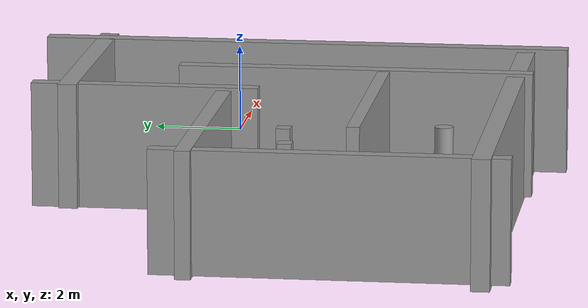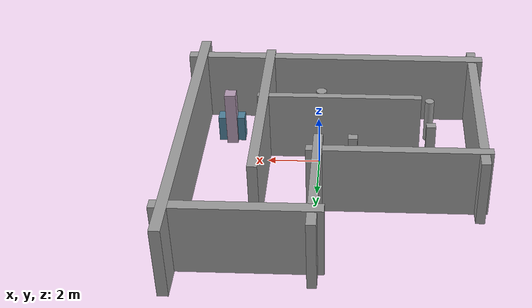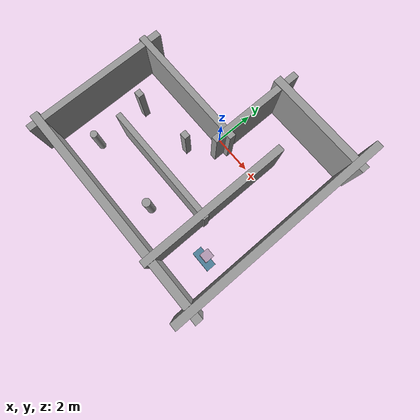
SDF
<?xml version='1.0'?>
<sdf version='1.7'>
  <model name='map_gazebo'>
    <link name='link_1'>
      <inertial>
        <mass>10.2985</mass>
        <inertia>
          <ixx>71.2303</ixx>
          <ixy>0</ixy>
          <ixz>0</ixz>
          <iyy>7.98523</iyy>
          <iyz>0</iyz>
          <izz>63.516</izz>
        </inertia>
        <pose>0 0 0 0 -0 0</pose>
      </inertial>
      <pose>2.43464 -2.48248 -0.477073 0 -0 0</pose>
      <self_collide>0</self_collide>
      <enable_wind>0</enable_wind>
      <kinematic>0</kinematic>
      <visual name='visual'>
        <pose>0 0 0 0 -0 0</pose>
        <geometry>
          <box>
            <size>0.397271 8.59371 3.02435</size>
          </box>
        </geometry>
        <material>
          <lighting>1</lighting>
          <script>
            <uri>file://media/materials/scripts/gazebo.material</uri>
            <name>Gazebo/Grey</name>
          </script>
          <shader type='pixel'/>
        </material>
        <transparency>0</transparency>
        <cast_shadows>1</cast_shadows>
      </visual>
      <collision name='collision'>
        <laser_retro>0</laser_retro>
        <max_contacts>10</max_contacts>
        <pose>0 0 0 0 -0 0</pose>
        <geometry>
          <box>
            <size>0.397271 8.59371 3.02435</size>
          </box>
        </geometry>
        <surface>
          <friction>
            <ode>
              <mu>1</mu>
              <mu2>1</mu2>
              <fdir1>0 0 0</fdir1>
              <slip1>0</slip1>
              <slip2>0</slip2>
            </ode>
            <torsional>
              <coefficient>1</coefficient>
              <patch_radius>0</patch_radius>
              <surface_radius>0</surface_radius>
              <use_patch_radius>1</use_patch_radius>
              <ode>
                <slip>0</slip>
              </ode>
            </torsional>
          </friction>
          <bounce>
            <restitution_coefficient>0</restitution_coefficient>
            <threshold>1e+06</threshold>
          </bounce>
          <contact>
            <collide_without_contact>0</collide_without_contact>
            <collide_without_contact_bitmask>1</collide_without_contact_bitmask>
            <collide_bitmask>1</collide_bitmask>
            <ode>
              <soft_cfm>0</soft_cfm>
              <soft_erp>0.2</soft_erp>
              <kp>1e+13</kp>
              <kd>1</kd>
              <max_vel>0.01</max_vel>
              <min_depth>0</min_depth>
            </ode>
            <bullet>
              <split_impulse>1</split_impulse>
              <split_impulse_penetration_threshold>-0.01</split_impulse_penetration_threshold>
              <soft_cfm>0</soft_cfm>
              <soft_erp>0.2</soft_erp>
              <kp>1e+13</kp>
              <kd>1</kd>
            </bullet>
          </contact>
        </surface>
      </collision>
    </link>
    <link name='link_0'>
      <inertial>
        <mass>0.446375</mass>
        <inertia>
          <ixx>0.185328</ixx>
          <ixy>0</ixy>
          <ixz>0</ixz>
          <iyy>0.185328</iyy>
          <iyz>0</iyz>
          <izz>0.0113327</izz>
        </inertia>
        <pose>0 0 0 0 -0 0</pose>
      </inertial>
      <pose>0.140139 -4.85907 -0.942998 0 0.002317 2.8e-05</pose>
      <self_collide>0</self_collide>
      <enable_wind>0</enable_wind>
      <kinematic>0</kinematic>
      <visual name='visual'>
        <pose>0 0 0 0 -0 0</pose>
        <geometry>
          <cylinder>
            <radius>0.225337</radius>
            <length>2.1977</length>
          </cylinder>
        </geometry>
        <material>
          <lighting>1</lighting>
          <script>
            <uri>file://media/materials/scripts/gazebo.material</uri>
            <name>Gazebo/Grey</name>
          </script>
          <shader type='pixel'/>
        </material>
        <transparency>0</transparency>
        <cast_shadows>1</cast_shadows>
      </visual>
      <collision name='collision'>
        <laser_retro>0</laser_retro>
        <max_contacts>10</max_contacts>
        <pose>0 0 0 0 -0 0</pose>
        <geometry>
          <cylinder>
            <radius>0.225337</radius>
            <length>2.1977</length>
          </cylinder>
        </geometry>
        <surface>
          <friction>
            <ode>
              <mu>1</mu>
              <mu2>1</mu2>
              <fdir1>0 0 0</fdir1>
              <slip1>0</slip1>
              <slip2>0</slip2>
            </ode>
            <torsional>
              <coefficient>1</coefficient>
              <patch_radius>0</patch_radius>
              <surface_radius>0</surface_radius>
              <use_patch_radius>1</use_patch_radius>
              <ode>
                <slip>0</slip>
              </ode>
            </torsional>
          </friction>
          <bounce>
            <restitution_coefficient>0</restitution_coefficient>
            <threshold>1e+06</threshold>
          </bounce>
          <contact>
            <collide_without_contact>0</collide_without_contact>
            <collide_without_contact_bitmask>1</collide_without_contact_bitmask>
            <collide_bitmask>1</collide_bitmask>
            <ode>
              <soft_cfm>0</soft_cfm>
              <soft_erp>0.2</soft_erp>
              <kp>1e+13</kp>
              <kd>1</kd>
              <max_vel>0.01</max_vel>
              <min_depth>0</min_depth>
            </ode>
            <bullet>
              <split_impulse>1</split_impulse>
              <split_impulse_penetration_threshold>-0.01</split_impulse_penetration_threshold>
              <soft_cfm>0</soft_cfm>
              <soft_erp>0.2</soft_erp>
              <kp>1e+13</kp>
              <kd>1</kd>
            </bullet>
          </contact>
        </surface>
      </collision>
    </link>
    <link name='link_0_0'>
      <inertial>
        <mass>0.68028</mass>
        <inertia>
          <ixx>0.0901942</ixx>
          <ixy>0</ixy>
          <ixz>0</ixz>
          <iyy>0.146364</iyy>
          <iyz>0</iyz>
          <izz>0.0876655</izz>
        </inertia>
        <pose>0 0 0 0 -0 0</pose>
      </inertial>
      <pose>4.01474 -4.42855 -1.46333 0 0.002317 2.8e-05</pose>
      <gravity>1</gravity>
      <self_collide>0</self_collide>
      <kinematic>0</kinematic>
      <enable_wind>0</enable_wind>
      <visual name='visual'>
        <pose>0 0 0 0 -0 0</pose>
        <geometry>
          <box>
            <size>1.12633 0.527057 1.14596</size>
          </box>
        </geometry>
        <material>
          <lighting>1</lighting>
          <script>
            <uri>file://media/materials/scripts/gazebo.material</uri>
            <name>Gazebo/Grey</name>
          </script>
          <shader type='pixel'>
            <normal_map>__default__</normal_map>
          </shader>
          <ambient>0.3 0.5 0.6 1</ambient>
          <diffuse>0.7 0.7 0.7 1</diffuse>
          <specular>0.01 0.01 0.01 1</specular>
          <emissive>0 0 0 1</emissive>
        </material>
        <transparency>0</transparency>
        <cast_shadows>1</cast_shadows>
      </visual>
      <collision name='collision'>
        <laser_retro>0</laser_retro>
        <max_contacts>10</max_contacts>
        <pose>0 0 0 0 -0 0</pose>
        <geometry>
          <box>
            <size>1.12633 0.527057 1.14596</size>
          </box>
        </geometry>
        <surface>
          <friction>
            <ode>
              <mu>1</mu>
              <mu2>1</mu2>
              <fdir1>0 0 0</fdir1>
              <slip1>0</slip1>
              <slip2>0</slip2>
            </ode>
            <torsional>
              <coefficient>1</coefficient>
              <patch_radius>0</patch_radius>
              <surface_radius>0</surface_radius>
              <use_patch_radius>1</use_patch_radius>
              <ode>
                <slip>0</slip>
              </ode>
            </torsional>
          </friction>
          <bounce>
            <restitution_coefficient>0</restitution_coefficient>
            <threshold>1e+06</threshold>
          </bounce>
          <contact>
            <collide_without_contact>0</collide_without_contact>
            <collide_without_contact_bitmask>1</collide_without_contact_bitmask>
            <collide_bitmask>1</collide_bitmask>
            <ode>
              <soft_cfm>0</soft_cfm>
              <soft_erp>0.2</soft_erp>
              <kp>1e+13</kp>
              <kd>1</kd>
              <max_vel>0.01</max_vel>
              <min_depth>0</min_depth>
            </ode>
            <bullet>
              <split_impulse>1</split_impulse>
              <split_impulse_penetration_threshold>-0.01</split_impulse_penetration_threshold>
              <soft_cfm>0</soft_cfm>
              <soft_erp>0.2</soft_erp>
              <kp>1e+13</kp>
              <kd>1</kd>
            </bullet>
          </contact>
        </surface>
      </collision>
    </link>
    <link name='link_10'>
      <inertial>
        <mass>17.0476</mass>
        <inertia>
          <ixx>13.4581</ixx>
          <ixy>0</ixy>
          <ixz>0</ixz>
          <iyy>245.423</iyy>
          <iyz>0</iyz>
          <izz>232.509</izz>
        </inertia>
        <pose>0 0 0 0 -0 0</pose>
      </inertial>
      <pose>-0.397469 -6.37705 -0.557675 0 -0 0</pose>
      <self_collide>0</self_collide>
      <enable_wind>0</enable_wind>
      <kinematic>0</kinematic>
      <visual name='visual'>
        <pose>0 0 0 0 -0 0</pose>
        <geometry>
          <box>
            <size>12.7857 0.437546 3.04661</size>
          </box>
        </geometry>
        <material>
          <lighting>1</lighting>
          <script>
            <uri>file://media/materials/scripts/gazebo.material</uri>
            <name>Gazebo/Grey</name>
          </script>
          <shader type='pixel'/>
        </material>
        <transparency>0</transparency>
        <cast_shadows>1</cast_shadows>
      </visual>
      <collision name='collision'>
        <laser_retro>0</laser_retro>
        <max_contacts>10</max_contacts>
        <pose>0 0 0 0 -0 0</pose>
        <geometry>
          <box>
            <size>12.7857 0.437546 3.04661</size>
          </box>
        </geometry>
        <surface>
          <friction>
            <ode>
              <mu>1</mu>
              <mu2>1</mu2>
              <fdir1>0 0 0</fdir1>
              <slip1>0</slip1>
              <slip2>0</slip2>
            </ode>
            <torsional>
              <coefficient>1</coefficient>
              <patch_radius>0</patch_radius>
              <surface_radius>0</surface_radius>
              <use_patch_radius>1</use_patch_radius>
              <ode>
                <slip>0</slip>
              </ode>
            </torsional>
          </friction>
          <bounce>
            <restitution_coefficient>0</restitution_coefficient>
            <threshold>1e+06</threshold>
          </bounce>
          <contact>
            <collide_without_contact>0</collide_without_contact>
            <collide_without_contact_bitmask>1</collide_without_contact_bitmask>
            <collide_bitmask>1</collide_bitmask>
            <ode>
              <soft_cfm>0</soft_cfm>
              <soft_erp>0.2</soft_erp>
              <kp>1e+13</kp>
              <kd>1</kd>
              <max_vel>0.01</max_vel>
              <min_depth>0</min_depth>
            </ode>
            <bullet>
              <split_impulse>1</split_impulse>
              <split_impulse_penetration_threshold>-0.01</split_impulse_penetration_threshold>
              <soft_cfm>0</soft_cfm>
              <soft_erp>0.2</soft_erp>
              <kp>1e+13</kp>
              <kd>1</kd>
            </bullet>
          </contact>
        </surface>
      </collision>
    </link>
    <link name='link_12'>
      <inertial>
        <mass>8.53655</mass>
        <inertia>
          <ixx>6.65039</ixx>
          <ixy>0</ixy>
          <ixz>0</ixz>
          <iyy>34.292</iyy>
          <iyz>0</iyz>
          <izz>27.9318</izz>
        </inertia>
        <pose>0 0 0 0 -0 0</pose>
      </inertial>
      <pose>2.7519 4.11056 -0.469406 0 -0 0</pose>
      <self_collide>0</self_collide>
      <enable_wind>0</enable_wind>
      <kinematic>0</kinematic>
      <visual name='visual'>
        <pose>0 0 0 0 -0 0</pose>
        <geometry>
          <box>
            <size>6.24983 0.451674 3.024</size>
          </box>
        </geometry>
        <material>
          <lighting>1</lighting>
          <script>
            <uri>file://media/materials/scripts/gazebo.material</uri>
            <name>Gazebo/Grey</name>
          </script>
          <shader type='pixel'/>
        </material>
        <transparency>0</transparency>
        <cast_shadows>1</cast_shadows>
      </visual>
      <collision name='collision'>
        <laser_retro>0</laser_retro>
        <max_contacts>10</max_contacts>
        <pose>0 0 0 0 -0 0</pose>
        <geometry>
          <box>
            <size>6.24983 0.451674 3.024</size>
          </box>
        </geometry>
        <surface>
          <friction>
            <ode>
              <mu>1</mu>
              <mu2>1</mu2>
              <fdir1>0 0 0</fdir1>
              <slip1>0</slip1>
              <slip2>0</slip2>
            </ode>
            <torsional>
              <coefficient>1</coefficient>
              <patch_radius>0</patch_radius>
              <surface_radius>0</surface_radius>
              <use_patch_radius>1</use_patch_radius>
              <ode>
                <slip>0</slip>
              </ode>
            </torsional>
          </friction>
          <bounce>
            <restitution_coefficient>0</restitution_coefficient>
            <threshold>1e+06</threshold>
          </bounce>
          <contact>
            <collide_without_contact>0</collide_without_contact>
            <collide_without_contact_bitmask>1</collide_without_contact_bitmask>
            <collide_bitmask>1</collide_bitmask>
            <ode>
              <soft_cfm>0</soft_cfm>
              <soft_erp>0.2</soft_erp>
              <kp>1e+13</kp>
              <kd>1</kd>
              <max_vel>0.01</max_vel>
              <min_depth>0</min_depth>
            </ode>
            <bullet>
              <split_impulse>1</split_impulse>
              <split_impulse_penetration_threshold>-0.01</split_impulse_penetration_threshold>
              <soft_cfm>0</soft_cfm>
              <soft_erp>0.2</soft_erp>
              <kp>1e+13</kp>
              <kd>1</kd>
            </bullet>
          </contact>
        </surface>
      </collision>
    </link>
    <link name='link_1_0'>
      <inertial>
        <mass>0.326022</mass>
        <inertia>
          <ixx>0.184765</ixx>
          <ixy>0</ixy>
          <ixz>0</ixz>
          <iyy>0.185581</iyy>
          <iyz>0</iyz>
          <izz>0.00689835</izz>
        </inertia>
        <pose>0 0 0 0 -0 0</pose>
      </inertial>
      <pose>-1.27686 -1.21888 -0.943454 0 0.002317 2.8e-05</pose>
      <self_collide>0</self_collide>
      <enable_wind>0</enable_wind>
      <kinematic>0</kinematic>
      <visual name='visual'>
        <pose>0 0 0 0 -0 0</pose>
        <geometry>
          <box>
            <size>0.376807 0.334554 2.58627</size>
          </box>
        </geometry>
        <material>
          <lighting>1</lighting>
          <script>
            <uri>file://media/materials/scripts/gazebo.material</uri>
            <name>Gazebo/Grey</name>
          </script>
          <shader type='pixel'/>
        </material>
        <transparency>0</transparency>
        <cast_shadows>1</cast_shadows>
      </visual>
      <collision name='collision'>
        <laser_retro>0</laser_retro>
        <max_contacts>10</max_contacts>
        <pose>0 0 0 0 -0 0</pose>
        <geometry>
          <box>
            <size>0.376807 0.334554 2.58627</size>
          </box>
        </geometry>
        <surface>
          <friction>
            <ode>
              <mu>1</mu>
              <mu2>1</mu2>
              <fdir1>0 0 0</fdir1>
              <slip1>0</slip1>
              <slip2>0</slip2>
            </ode>
            <torsional>
              <coefficient>1</coefficient>
              <patch_radius>0</patch_radius>
              <surface_radius>0</surface_radius>
              <use_patch_radius>1</use_patch_radius>
              <ode>
                <slip>0</slip>
              </ode>
            </torsional>
          </friction>
          <bounce>
            <restitution_coefficient>0</restitution_coefficient>
            <threshold>1e+06</threshold>
          </bounce>
          <contact>
            <collide_without_contact>0</collide_without_contact>
            <collide_without_contact_bitmask>1</collide_without_contact_bitmask>
            <collide_bitmask>1</collide_bitmask>
            <ode>
              <soft_cfm>0</soft_cfm>
              <soft_erp>0.2</soft_erp>
              <kp>1e+13</kp>
              <kd>1</kd>
              <max_vel>0.01</max_vel>
              <min_depth>0</min_depth>
            </ode>
            <bullet>
              <split_impulse>1</split_impulse>
              <split_impulse_penetration_threshold>-0.01</split_impulse_penetration_threshold>
              <soft_cfm>0</soft_cfm>
              <soft_erp>0.2</soft_erp>
              <kp>1e+13</kp>
              <kd>1</kd>
            </bullet>
          </contact>
        </surface>
      </collision>
    </link>
    <link name='link_1_0_clone'>
      <inertial>
        <mass>0.326022</mass>
        <inertia>
          <ixx>0.184765</ixx>
          <ixy>0</ixy>
          <ixz>0</ixz>
          <iyy>0.185581</iyy>
          <iyz>0</iyz>
          <izz>0.00689835</izz>
        </inertia>
        <pose>0 0 0 0 -0 0</pose>
      </inertial>
      <pose>-4.3987 -1.65465 -0.605165 0 0.004634 5.6e-05</pose>
      <self_collide>0</self_collide>
      <enable_wind>0</enable_wind>
      <kinematic>0</kinematic>
      <visual name='visual_0'>
        <pose>0 0 0 0 -0 0</pose>
        <geometry>
          <box>
            <size>0.376807 0.334554 2.58627</size>
          </box>
        </geometry>
        <material>
          <lighting>1</lighting>
          <script>
            <uri>file://media/materials/scripts/gazebo.material</uri>
            <name>Gazebo/Grey</name>
          </script>
          <shader type='pixel'/>
        </material>
        <transparency>0</transparency>
        <cast_shadows>1</cast_shadows>
      </visual>
      <collision name='collision'>
        <laser_retro>0</laser_retro>
        <max_contacts>10</max_contacts>
        <pose>0 0 0 0 -0 0</pose>
        <geometry>
          <box>
            <size>0.376807 0.334554 2.58627</size>
          </box>
        </geometry>
        <surface>
          <friction>
            <ode>
              <mu>1</mu>
              <mu2>1</mu2>
              <fdir1>0 0 0</fdir1>
              <slip1>0</slip1>
              <slip2>0</slip2>
            </ode>
            <torsional>
              <coefficient>1</coefficient>
              <patch_radius>0</patch_radius>
              <surface_radius>0</surface_radius>
              <use_patch_radius>1</use_patch_radius>
              <ode>
                <slip>0</slip>
              </ode>
            </torsional>
          </friction>
          <bounce>
            <restitution_coefficient>0</restitution_coefficient>
            <threshold>1e+06</threshold>
          </bounce>
          <contact>
            <collide_without_contact>0</collide_without_contact>
            <collide_without_contact_bitmask>1</collide_without_contact_bitmask>
            <collide_bitmask>1</collide_bitmask>
            <ode>
              <soft_cfm>0</soft_cfm>
              <soft_erp>0.2</soft_erp>
              <kp>1e+13</kp>
              <kd>1</kd>
              <max_vel>0.01</max_vel>
              <min_depth>0</min_depth>
            </ode>
            <bullet>
              <split_impulse>1</split_impulse>
              <split_impulse_penetration_threshold>-0.01</split_impulse_penetration_threshold>
              <soft_cfm>0</soft_cfm>
              <soft_erp>0.2</soft_erp>
              <kp>1e+13</kp>
              <kd>1</kd>
            </bullet>
          </contact>
        </surface>
      </collision>
    </link>
    <link name='link_2'>
      <inertial>
        <mass>0.554632</mass>
        <inertia>
          <ixx>0.281109</ixx>
          <ixy>0</ixy>
          <ixz>0</ixz>
          <iyy>0.280186</iyy>
          <iyz>0</iyz>
          <izz>0.0212317</izz>
        </inertia>
        <pose>0 0 0 0 -0 0</pose>
      </inertial>
      <pose>3.99669 -4.24868 -0.863729 0 0.002317 2.8e-05</pose>
      <self_collide>0</self_collide>
      <enable_wind>0</enable_wind>
      <kinematic>0</kinematic>
      <gravity>1</gravity>
      <visual name='visual'>
        <pose>0 0 0 0 -0 0</pose>
        <geometry>
          <box>
            <size>0.468719 0.489561 2.41711</size>
          </box>
        </geometry>
        <material>
          <lighting>1</lighting>
          <script>
            <uri>file://media/materials/scripts/gazebo.material</uri>
            <name>Gazebo/Grey</name>
          </script>
          <shader type='pixel'>
            <normal_map>__default__</normal_map>
          </shader>
          <ambient>1 0.5 0.1 0</ambient>
          <diffuse>0.7 0.6 0.7 1</diffuse>
          <specular>0.01 0.01 0.01 1</specular>
          <emissive>0 0 0 1</emissive>
        </material>
        <transparency>0</transparency>
        <cast_shadows>1</cast_shadows>
      </visual>
      <collision name='collision'>
        <laser_retro>0</laser_retro>
        <max_contacts>10</max_contacts>
        <pose>0 0 0 0 -0 0</pose>
        <geometry>
          <box>
            <size>0.468719 0.489561 2.41711</size>
          </box>
        </geometry>
        <surface>
          <friction>
            <ode>
              <mu>1</mu>
              <mu2>1</mu2>
              <fdir1>0 0 0</fdir1>
              <slip1>0</slip1>
              <slip2>0</slip2>
            </ode>
            <torsional>
              <coefficient>1</coefficient>
              <patch_radius>0</patch_radius>
              <surface_radius>0</surface_radius>
              <use_patch_radius>1</use_patch_radius>
              <ode>
                <slip>0</slip>
              </ode>
            </torsional>
          </friction>
          <bounce>
            <restitution_coefficient>0</restitution_coefficient>
            <threshold>1e+06</threshold>
          </bounce>
          <contact>
            <collide_without_contact>0</collide_without_contact>
            <collide_without_contact_bitmask>1</collide_without_contact_bitmask>
            <collide_bitmask>1</collide_bitmask>
            <ode>
              <soft_cfm>0</soft_cfm>
              <soft_erp>0.2</soft_erp>
              <kp>1e+13</kp>
              <kd>1</kd>
              <max_vel>0.01</max_vel>
              <min_depth>0</min_depth>
            </ode>
            <bullet>
              <split_impulse>1</split_impulse>
              <split_impulse_penetration_threshold>-0.01</split_impulse_penetration_threshold>
              <soft_cfm>0</soft_cfm>
              <soft_erp>0.2</soft_erp>
              <kp>1e+13</kp>
              <kd>1</kd>
            </bullet>
          </contact>
        </surface>
      </collision>
    </link>
    <link name='link_3'>
      <inertial>
        <mass>8.99885</mass>
        <inertia>
          <ixx>57.0617</ixx>
          <ixy>0</ixy>
          <ixz>0</ixz>
          <iyy>6.45009</iyy>
          <iyz>0</iyz>
          <izz>50.824</izz>
        </inertia>
        <pose>0 0 0 0 -0 0</pose>
      </inertial>
      <pose>-6.34081 -2.91406 -0.530521 0 -0 0</pose>
      <self_collide>0</self_collide>
      <enable_wind>0</enable_wind>
      <kinematic>0</kinematic>
      <visual name='visual'>
        <pose>0 0 0 0 -0 0</pose>
        <geometry>
          <box>
            <size>0.376237 8.22389 2.90855</size>
          </box>
        </geometry>
        <material>
          <lighting>1</lighting>
          <script>
            <uri>file://media/materials/scripts/gazebo.material</uri>
            <name>Gazebo/Grey</name>
          </script>
          <shader type='pixel'/>
        </material>
        <transparency>0</transparency>
        <cast_shadows>1</cast_shadows>
      </visual>
      <collision name='collision'>
        <laser_retro>0</laser_retro>
        <max_contacts>10</max_contacts>
        <pose>0 0 0 0 -0 0</pose>
        <geometry>
          <box>
            <size>0.376237 8.22389 2.90855</size>
          </box>
        </geometry>
        <surface>
          <friction>
            <ode>
              <mu>1</mu>
              <mu2>1</mu2>
              <fdir1>0 0 0</fdir1>
              <slip1>0</slip1>
              <slip2>0</slip2>
            </ode>
            <torsional>
              <coefficient>1</coefficient>
              <patch_radius>0</patch_radius>
              <surface_radius>0</surface_radius>
              <use_patch_radius>1</use_patch_radius>
              <ode>
                <slip>0</slip>
              </ode>
            </torsional>
          </friction>
          <bounce>
            <restitution_coefficient>0</restitution_coefficient>
            <threshold>1e+06</threshold>
          </bounce>
          <contact>
            <collide_without_contact>0</collide_without_contact>
            <collide_without_contact_bitmask>1</collide_without_contact_bitmask>
            <collide_bitmask>1</collide_bitmask>
            <ode>
              <soft_cfm>0</soft_cfm>
              <soft_erp>0.2</soft_erp>
              <kp>1e+13</kp>
              <kd>1</kd>
              <max_vel>0.01</max_vel>
              <min_depth>0</min_depth>
            </ode>
            <bullet>
              <split_impulse>1</split_impulse>
              <split_impulse_penetration_threshold>-0.01</split_impulse_penetration_threshold>
              <soft_cfm>0</soft_cfm>
              <soft_erp>0.2</soft_erp>
              <kp>1e+13</kp>
              <kd>1</kd>
            </bullet>
          </contact>
        </surface>
      </collision>
    </link>
    <link name='link_3_0'>
      <inertial>
        <mass>0.299789</mass>
        <inertia>
          <ixx>0.0978972</ixx>
          <ixy>0</ixy>
          <ixz>0</ixz>
          <iyy>0.0978972</iyy>
          <iyz>0</iyz>
          <izz>0.00576016</izz>
        </inertia>
        <pose>0 0 0 0 -0 0</pose>
      </inertial>
      <pose>-4.51675 -4.72558 -1.14659 0 0.002317 2.8e-05</pose>
      <self_collide>0</self_collide>
      <enable_wind>0</enable_wind>
      <kinematic>0</kinematic>
      <visual name='visual'>
        <pose>0 0 0 0 -0 0</pose>
        <geometry>
          <cylinder>
            <radius>0.196031</radius>
            <length>1.95022</length>
          </cylinder>
        </geometry>
        <material>
          <lighting>1</lighting>
          <script>
            <uri>file://media/materials/scripts/gazebo.material</uri>
            <name>Gazebo/Grey</name>
          </script>
          <shader type='pixel'/>
        </material>
        <transparency>0</transparency>
        <cast_shadows>1</cast_shadows>
      </visual>
      <collision name='collision'>
        <laser_retro>0</laser_retro>
        <max_contacts>10</max_contacts>
        <pose>0 0 0 0 -0 0</pose>
        <geometry>
          <cylinder>
            <radius>0.196031</radius>
            <length>1.95022</length>
          </cylinder>
        </geometry>
        <surface>
          <friction>
            <ode>
              <mu>1</mu>
              <mu2>1</mu2>
              <fdir1>0 0 0</fdir1>
              <slip1>0</slip1>
              <slip2>0</slip2>
            </ode>
            <torsional>
              <coefficient>1</coefficient>
              <patch_radius>0</patch_radius>
              <surface_radius>0</surface_radius>
              <use_patch_radius>1</use_patch_radius>
              <ode>
                <slip>0</slip>
              </ode>
            </torsional>
          </friction>
          <bounce>
            <restitution_coefficient>0</restitution_coefficient>
            <threshold>1e+06</threshold>
          </bounce>
          <contact>
            <collide_without_contact>0</collide_without_contact>
            <collide_without_contact_bitmask>1</collide_without_contact_bitmask>
            <collide_bitmask>1</collide_bitmask>
            <ode>
              <soft_cfm>0</soft_cfm>
              <soft_erp>0.2</soft_erp>
              <kp>1e+13</kp>
              <kd>1</kd>
              <max_vel>0.01</max_vel>
              <min_depth>0</min_depth>
            </ode>
            <bullet>
              <split_impulse>1</split_impulse>
              <split_impulse_penetration_threshold>-0.01</split_impulse_penetration_threshold>
              <soft_cfm>0</soft_cfm>
              <soft_erp>0.2</soft_erp>
              <kp>1e+13</kp>
              <kd>1</kd>
            </bullet>
          </contact>
        </surface>
      </collision>
    </link>
    <link name='link_5'>
      <inertial>
        <mass>6.14977</mass>
        <inertia>
          <ixx>4.74295</ixx>
          <ixy>0</ixy>
          <ixz>0</ixz>
          <iyy>28.0752</iyy>
          <iyz>0</iyz>
          <izz>23.4249</izz>
        </inertia>
        <pose>0 0 0 0 -0 0</pose>
      </inertial>
      <pose>-0.667343 -3.17966 -0.503074 0 -0 0</pose>
      <self_collide>0</self_collide>
      <enable_wind>0</enable_wind>
      <kinematic>0</kinematic>
      <visual name='visual'>
        <pose>0 0 0 0 -0 0</pose>
        <geometry>
          <box>
            <size>6.75414 0.300761 3.02728</size>
          </box>
        </geometry>
        <material>
          <lighting>1</lighting>
          <script>
            <uri>file://media/materials/scripts/gazebo.material</uri>
            <name>Gazebo/Grey</name>
          </script>
          <shader type='pixel'/>
        </material>
        <transparency>0</transparency>
        <cast_shadows>1</cast_shadows>
      </visual>
      <collision name='collision'>
        <laser_retro>0</laser_retro>
        <max_contacts>10</max_contacts>
        <pose>0 0 0 0 -0 0</pose>
        <geometry>
          <box>
            <size>6.75414 0.300761 3.02728</size>
          </box>
        </geometry>
        <surface>
          <friction>
            <ode>
              <mu>1</mu>
              <mu2>1</mu2>
              <fdir1>0 0 0</fdir1>
              <slip1>0</slip1>
              <slip2>0</slip2>
            </ode>
            <torsional>
              <coefficient>1</coefficient>
              <patch_radius>0</patch_radius>
              <surface_radius>0</surface_radius>
              <use_patch_radius>1</use_patch_radius>
              <ode>
                <slip>0</slip>
              </ode>
            </torsional>
          </friction>
          <bounce>
            <restitution_coefficient>0</restitution_coefficient>
            <threshold>1e+06</threshold>
          </bounce>
          <contact>
            <collide_without_contact>0</collide_without_contact>
            <collide_without_contact_bitmask>1</collide_without_contact_bitmask>
            <collide_bitmask>1</collide_bitmask>
            <ode>
              <soft_cfm>0</soft_cfm>
              <soft_erp>0.2</soft_erp>
              <kp>1e+13</kp>
              <kd>1</kd>
              <max_vel>0.01</max_vel>
              <min_depth>0</min_depth>
            </ode>
            <bullet>
              <split_impulse>1</split_impulse>
              <split_impulse_penetration_threshold>-0.01</split_impulse_penetration_threshold>
              <soft_cfm>0</soft_cfm>
              <soft_erp>0.2</soft_erp>
              <kp>1e+13</kp>
              <kd>1</kd>
            </bullet>
          </contact>
        </surface>
      </collision>
    </link>
    <link name='link_7'>
      <inertial>
        <mass>7.91092</mass>
        <inertia>
          <ixx>5.9616</ixx>
          <ixy>0</ixy>
          <ixz>0</ixz>
          <iyy>40.1584</iyy>
          <iyz>0</iyz>
          <izz>34.375</izz>
        </inertia>
        <pose>0 0 0 0 -0 0</pose>
      </inertial>
      <pose>-3.09224 0.377491 -0.55143 0 -0 0</pose>
      <self_collide>0</self_collide>
      <enable_wind>0</enable_wind>
      <kinematic>0</kinematic>
      <visual name='visual'>
        <pose>0 0 0 0 -0 0</pose>
        <geometry>
          <box>
            <size>7.21166 0.367616 2.98462</size>
          </box>
        </geometry>
        <material>
          <lighting>1</lighting>
          <script>
            <uri>file://media/materials/scripts/gazebo.material</uri>
            <name>Gazebo/Grey</name>
          </script>
          <shader type='pixel'/>
        </material>
        <transparency>0</transparency>
        <cast_shadows>1</cast_shadows>
      </visual>
      <collision name='collision'>
        <laser_retro>0</laser_retro>
        <max_contacts>10</max_contacts>
        <pose>0 0 0 0 -0 0</pose>
        <geometry>
          <box>
            <size>7.21166 0.367616 2.98462</size>
          </box>
        </geometry>
        <surface>
          <friction>
            <ode>
              <mu>1</mu>
              <mu2>1</mu2>
              <fdir1>0 0 0</fdir1>
              <slip1>0</slip1>
              <slip2>0</slip2>
            </ode>
            <torsional>
              <coefficient>1</coefficient>
              <patch_radius>0</patch_radius>
              <surface_radius>0</surface_radius>
              <use_patch_radius>1</use_patch_radius>
              <ode>
                <slip>0</slip>
              </ode>
            </torsional>
          </friction>
          <bounce>
            <restitution_coefficient>0</restitution_coefficient>
            <threshold>1e+06</threshold>
          </bounce>
          <contact>
            <collide_without_contact>0</collide_without_contact>
            <collide_without_contact_bitmask>1</collide_without_contact_bitmask>
            <collide_bitmask>1</collide_bitmask>
            <ode>
              <soft_cfm>0</soft_cfm>
              <soft_erp>0.2</soft_erp>
              <kp>1e+13</kp>
              <kd>1</kd>
              <max_vel>0.01</max_vel>
              <min_depth>0</min_depth>
            </ode>
            <bullet>
              <split_impulse>1</split_impulse>
              <split_impulse_penetration_threshold>-0.01</split_impulse_penetration_threshold>
              <soft_cfm>0</soft_cfm>
              <soft_erp>0.2</soft_erp>
              <kp>1e+13</kp>
              <kd>1</kd>
            </bullet>
          </contact>
        </surface>
      </collision>
    </link>
    <link name='link_8'>
      <inertial>
        <mass>6.05037</mass>
        <inertia>
          <ixx>19.632</ixx>
          <ixy>0</ixy>
          <ixz>0</ixz>
          <iyy>4.65738</iyy>
          <iyz>0</iyz>
          <izz>15.1106</izz>
        </inertia>
        <pose>0 0 0 0 -0 0</pose>
      </inertial>
      <pose>0.058365 2.29353 -0.496462 0 -0 0</pose>
      <self_collide>0</self_collide>
      <enable_wind>0</enable_wind>
      <kinematic>0</kinematic>
      <visual name='visual'>
        <pose>0 0 0 0 -0 0</pose>
        <geometry>
          <box>
            <size>0.367167 5.46212 3.01702</size>
          </box>
        </geometry>
        <material>
          <lighting>1</lighting>
          <script>
            <uri>file://media/materials/scripts/gazebo.material</uri>
            <name>Gazebo/Grey</name>
          </script>
          <shader type='pixel'/>
        </material>
        <transparency>0</transparency>
        <cast_shadows>1</cast_shadows>
      </visual>
      <collision name='collision'>
        <laser_retro>0</laser_retro>
        <max_contacts>10</max_contacts>
        <pose>0 0 0 0 -0 0</pose>
        <geometry>
          <box>
            <size>0.367167 5.46212 3.01702</size>
          </box>
        </geometry>
        <surface>
          <friction>
            <ode>
              <mu>1</mu>
              <mu2>1</mu2>
              <fdir1>0 0 0</fdir1>
              <slip1>0</slip1>
              <slip2>0</slip2>
            </ode>
            <torsional>
              <coefficient>1</coefficient>
              <patch_radius>0</patch_radius>
              <surface_radius>0</surface_radius>
              <use_patch_radius>1</use_patch_radius>
              <ode>
                <slip>0</slip>
              </ode>
            </torsional>
          </friction>
          <bounce>
            <restitution_coefficient>0</restitution_coefficient>
            <threshold>1e+06</threshold>
          </bounce>
          <contact>
            <collide_without_contact>0</collide_without_contact>
            <collide_without_contact_bitmask>1</collide_without_contact_bitmask>
            <collide_bitmask>1</collide_bitmask>
            <ode>
              <soft_cfm>0</soft_cfm>
              <soft_erp>0.2</soft_erp>
              <kp>1e+13</kp>
              <kd>1</kd>
              <max_vel>0.01</max_vel>
              <min_depth>0</min_depth>
            </ode>
            <bullet>
              <split_impulse>1</split_impulse>
              <split_impulse_penetration_threshold>-0.01</split_impulse_penetration_threshold>
              <soft_cfm>0</soft_cfm>
              <soft_erp>0.2</soft_erp>
              <kp>1e+13</kp>
              <kd>1</kd>
            </bullet>
          </contact>
        </surface>
      </collision>
    </link>
    <link name='link_9'>
      <inertial>
        <mass>16.8855</mass>
        <inertia>
          <ixx>250.652</ixx>
          <ixy>0</ixy>
          <ixz>0</ixz>
          <iyy>13.6273</iyy>
          <iyz>0</iyz>
          <izz>237.525</izz>
        </inertia>
        <pose>0 0 0 0 -0 0</pose>
      </inertial>
      <pose>5.39696 -0.901973 -0.495671 0 -0 0</pose>
      <self_collide>0</self_collide>
      <enable_wind>0</enable_wind>
      <kinematic>0</kinematic>
      <visual name='visual'>
        <pose>0 0 0 0 -0 0</pose>
        <geometry>
          <box>
            <size>0.421767 12.9855 3.08328</size>
          </box>
        </geometry>
        <material>
          <lighting>1</lighting>
          <script>
            <uri>file://media/materials/scripts/gazebo.material</uri>
            <name>Gazebo/Grey</name>
          </script>
          <shader type='pixel'/>
        </material>
        <transparency>0</transparency>
        <cast_shadows>1</cast_shadows>
      </visual>
      <collision name='collision'>
        <laser_retro>0</laser_retro>
        <max_contacts>10</max_contacts>
        <pose>0 0 0 0 -0 0</pose>
        <geometry>
          <box>
            <size>0.421767 12.9855 3.08328</size>
          </box>
        </geometry>
        <surface>
          <friction>
            <ode>
              <mu>1</mu>
              <mu2>1</mu2>
              <fdir1>0 0 0</fdir1>
              <slip1>0</slip1>
              <slip2>0</slip2>
            </ode>
            <torsional>
              <coefficient>1</coefficient>
              <patch_radius>0</patch_radius>
              <surface_radius>0</surface_radius>
              <use_patch_radius>1</use_patch_radius>
              <ode>
                <slip>0</slip>
              </ode>
            </torsional>
          </friction>
          <bounce>
            <restitution_coefficient>0</restitution_coefficient>
            <threshold>1e+06</threshold>
          </bounce>
          <contact>
            <collide_without_contact>0</collide_without_contact>
            <collide_without_contact_bitmask>1</collide_without_contact_bitmask>
            <collide_bitmask>1</collide_bitmask>
            <ode>
              <soft_cfm>0</soft_cfm>
              <soft_erp>0.2</soft_erp>
              <kp>1e+13</kp>
              <kd>1</kd>
              <max_vel>0.01</max_vel>
              <min_depth>0</min_depth>
            </ode>
            <bullet>
              <split_impulse>1</split_impulse>
              <split_impulse_penetration_threshold>-0.01</split_impulse_penetration_threshold>
              <soft_cfm>0</soft_cfm>
              <soft_erp>0.2</soft_erp>
              <kp>1e+13</kp>
              <kd>1</kd>
            </bullet>
          </contact>
        </surface>
      </collision>
    </link>
    <static>1</static>
    <allow_auto_disable>1</allow_auto_disable>
  </model>
</sdf>
